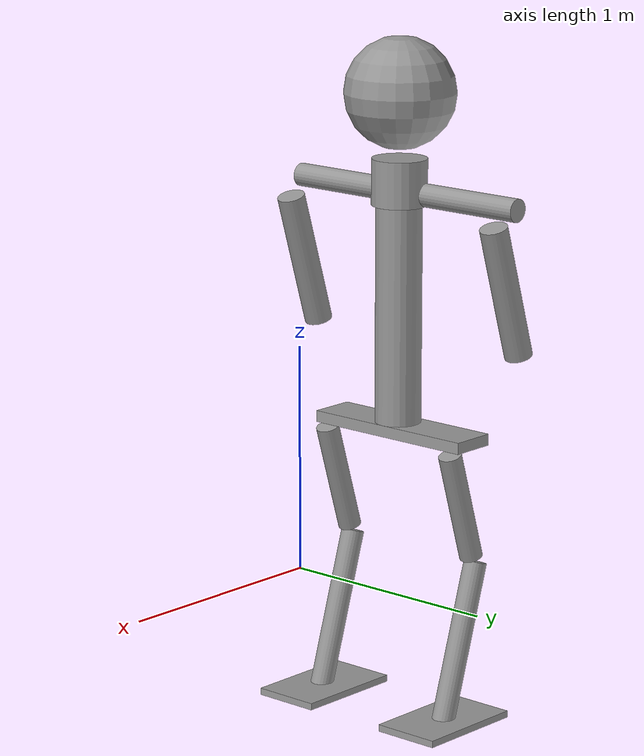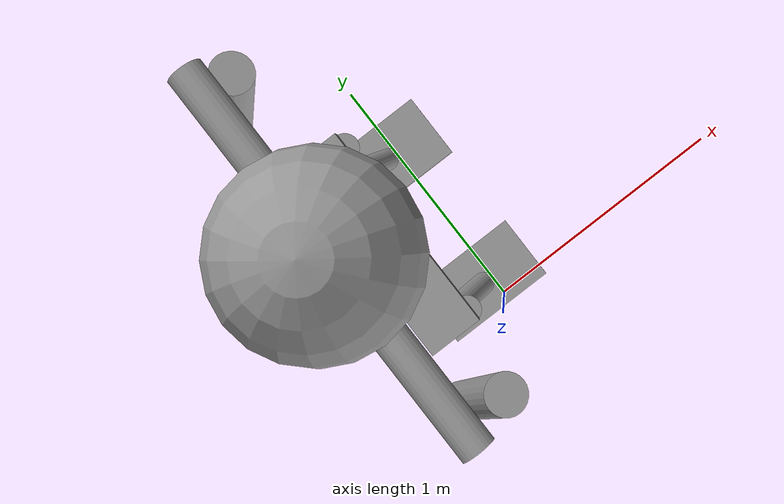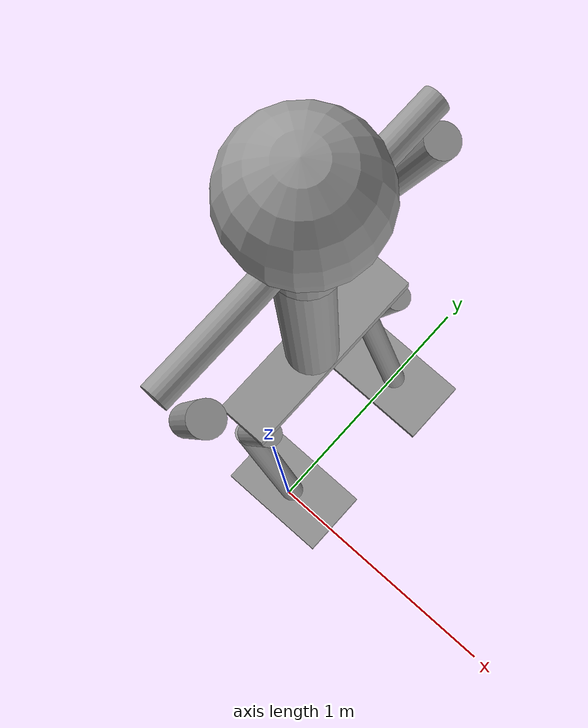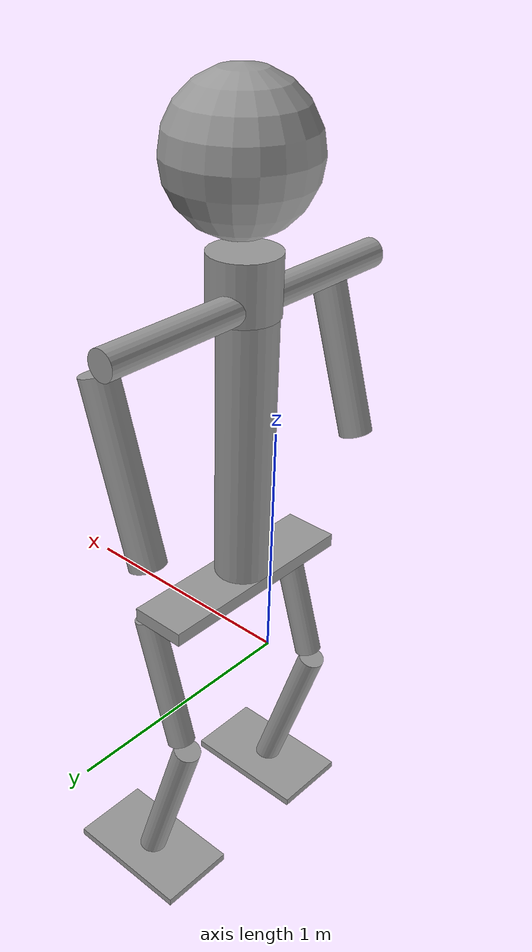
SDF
<?xml version='1.0'?>
<sdf version='1.6'>
  <model name='HumanoidRobot'>
    <model name='Untitled'>
      <model name='HumanoidRobot'>
        <link name='link_1'>
          <pose frame=''>-0.173443 0.410402 2.12746 0 -0 0</pose>
          <inertial>
            <mass>0.94</mass>
            <inertia>
              <ixx>0.1</ixx>
              <ixy>0</ixy>
              <ixz>0</ixz>
              <iyy>0.1</iyy>
              <iyz>0</iyz>
              <izz>0.1</izz>
            </inertia>
            <pose frame=''>0 0 0 0 -0 0</pose>
          </inertial>
          <gravity>1</gravity>
          <self_collide>0</self_collide>
          <kinematic>0</kinematic>
          <visual name='visual'>
            <pose frame=''>0 0 0 0 -0 0</pose>
            <geometry>
              <sphere>
                <radius>0.24</radius>
              </sphere>
            </geometry>
            <material>
              <lighting>1</lighting>
              <script>
                <uri>file://media/materials/scripts/gazebo.material</uri>
                <name>Gazebo/Grey</name>
              </script>
              <shader type='pixel'>
                <normal_map>__default__</normal_map>
              </shader>
              <ambient>0.3 0.3 0.3 1</ambient>
              <diffuse>0.7 0.7 0.7 1</diffuse>
              <specular>0.01 0.01 0.01 1</specular>
              <emissive>0 0 0 1</emissive>
            </material>
            <transparency>0</transparency>
            <cast_shadows>1</cast_shadows>
          </visual>
          <collision name='collision'>
            <laser_retro>0</laser_retro>
            <max_contacts>10</max_contacts>
            <pose frame=''>0 0 0 0 -0 0</pose>
            <geometry>
              <sphere>
                <radius>0.24</radius>
              </sphere>
            </geometry>
            <surface>
              <friction>
                <ode>
                  <mu>1</mu>
                  <mu2>1</mu2>
                  <fdir1>0 0 0</fdir1>
                  <slip1>0</slip1>
                  <slip2>0</slip2>
                </ode>
                <torsional>
                  <coefficient>1</coefficient>
                  <patch_radius>0</patch_radius>
                  <surface_radius>0</surface_radius>
                  <use_patch_radius>1</use_patch_radius>
                  <ode>
                    <slip>0</slip>
                  </ode>
                </torsional>
              </friction>
              <bounce>
                <restitution_coefficient>0</restitution_coefficient>
                <threshold>1e+06</threshold>
              </bounce>
              <contact>
                <collide_without_contact>0</collide_without_contact>
                <collide_without_contact_bitmask>1</collide_without_contact_bitmask>
                <collide_bitmask>1</collide_bitmask>
                <ode>
                  <soft_cfm>0</soft_cfm>
                  <soft_erp>0.2</soft_erp>
                  <kp>1e+13</kp>
                  <kd>1</kd>
                  <max_vel>0.01</max_vel>
                  <min_depth>0</min_depth>
                </ode>
                <bullet>
                  <split_impulse>1</split_impulse>
                  <split_impulse_penetration_threshold>-0.01</split_impulse_penetration_threshold>
                  <soft_cfm>0</soft_cfm>
                  <soft_erp>0.2</soft_erp>
                  <kp>1e+13</kp>
                  <kd>1</kd>
                </bullet>
              </contact>
            </surface>
          </collision>
        </link>
        <link name='link_2'>
          <pose frame=''>-0.183443 0.400402 1.74746 0 -0 0</pose>
          <inertial>
            <mass>1</mass>
            <inertia>
              <ixx>0.145833</ixx>
              <ixy>0</ixy>
              <ixz>0</ixz>
              <iyy>0.145833</iyy>
              <iyz>0</iyz>
              <izz>0.125</izz>
            </inertia>
            <pose frame=''>0 0 0 0 -0 0</pose>
          </inertial>
          <gravity>1</gravity>
          <self_collide>0</self_collide>
          <kinematic>0</kinematic>
          <visual name='visual'>
            <pose frame=''>0 0 0 0 -0 0</pose>
            <geometry>
              <cylinder>
                <radius>0.12</radius>
                <length>0.2</length>
              </cylinder>
            </geometry>
            <material>
              <lighting>1</lighting>
              <script>
                <uri>file://media/materials/scripts/gazebo.material</uri>
                <name>Gazebo/Grey</name>
              </script>
              <shader type='pixel'>
                <normal_map>__default__</normal_map>
              </shader>
              <ambient>0.3 0.3 0.3 1</ambient>
              <diffuse>0.7 0.7 0.7 1</diffuse>
              <specular>0.01 0.01 0.01 1</specular>
              <emissive>0 0 0 1</emissive>
            </material>
            <transparency>0</transparency>
            <cast_shadows>1</cast_shadows>
          </visual>
          <collision name='collision'>
            <laser_retro>0</laser_retro>
            <max_contacts>10</max_contacts>
            <pose frame=''>0 0 0 0 -0 0</pose>
            <geometry>
              <cylinder>
                <radius>0.12</radius>
                <length>0.2</length>
              </cylinder>
            </geometry>
            <surface>
              <friction>
                <ode>
                  <mu>1</mu>
                  <mu2>1</mu2>
                  <fdir1>0 0 0</fdir1>
                  <slip1>0</slip1>
                  <slip2>0</slip2>
                </ode>
                <torsional>
                  <coefficient>1</coefficient>
                  <patch_radius>0</patch_radius>
                  <surface_radius>0</surface_radius>
                  <use_patch_radius>1</use_patch_radius>
                  <ode>
                    <slip>0</slip>
                  </ode>
                </torsional>
              </friction>
              <bounce>
                <restitution_coefficient>0</restitution_coefficient>
                <threshold>1e+06</threshold>
              </bounce>
              <contact>
                <collide_without_contact>0</collide_without_contact>
                <collide_without_contact_bitmask>1</collide_without_contact_bitmask>
                <collide_bitmask>1</collide_bitmask>
                <ode>
                  <soft_cfm>0</soft_cfm>
                  <soft_erp>0.2</soft_erp>
                  <kp>1e+13</kp>
                  <kd>1</kd>
                  <max_vel>0.01</max_vel>
                  <min_depth>0</min_depth>
                </ode>
                <bullet>
                  <split_impulse>1</split_impulse>
                  <split_impulse_penetration_threshold>-0.01</split_impulse_penetration_threshold>
                  <soft_cfm>0</soft_cfm>
                  <soft_erp>0.2</soft_erp>
                  <kp>1e+13</kp>
                  <kd>1</kd>
                </bullet>
              </contact>
            </surface>
          </collision>
        </link>
        <link name='link_3'>
          <pose frame=''>-0.218443 0.410402 1.69752 0 -0 0</pose>
          <inertial>
            <mass>1</mass>
            <inertia>
              <ixx>0.145833</ixx>
              <ixy>0</ixy>
              <ixz>0</ixz>
              <iyy>0.145833</iyy>
              <iyz>0</iyz>
              <izz>0.125</izz>
            </inertia>
            <pose frame=''>0 0 0 0 -0 0</pose>
          </inertial>
          <gravity>1</gravity>
          <self_collide>0</self_collide>
          <kinematic>0</kinematic>
          <visual name='visual'>
            <pose frame=''>0 0 0 1.5707 -0 0</pose>
            <geometry>
              <cylinder>
                <radius>0.05</radius>
                <length>1.2</length>
              </cylinder>
            </geometry>
            <material>
              <lighting>1</lighting>
              <script>
                <uri>file://media/materials/scripts/gazebo.material</uri>
                <name>Gazebo/Grey</name>
              </script>
              <shader type='pixel'>
                <normal_map>__default__</normal_map>
              </shader>
              <ambient>0.3 0.3 0.3 1</ambient>
              <diffuse>0.7 0.7 0.7 1</diffuse>
              <specular>0.01 0.01 0.01 1</specular>
              <emissive>0 0 0 1</emissive>
            </material>
            <transparency>0</transparency>
            <cast_shadows>1</cast_shadows>
          </visual>
          <collision name='collision'>
            <laser_retro>0</laser_retro>
            <max_contacts>10</max_contacts>
            <pose frame=''>0 0 0 1.5707 -0 0</pose>
            <geometry>
              <cylinder>
                <radius>0.05</radius>
                <length>1.2</length>
              </cylinder>
            </geometry>
            <surface>
              <friction>
                <ode>
                  <mu>1</mu>
                  <mu2>1</mu2>
                  <fdir1>0 0 0</fdir1>
                  <slip1>0</slip1>
                  <slip2>0</slip2>
                </ode>
                <torsional>
                  <coefficient>1</coefficient>
                  <patch_radius>0</patch_radius>
                  <surface_radius>0</surface_radius>
                  <use_patch_radius>1</use_patch_radius>
                  <ode>
                    <slip>0</slip>
                  </ode>
                </torsional>
              </friction>
              <bounce>
                <restitution_coefficient>0</restitution_coefficient>
                <threshold>1e+06</threshold>
              </bounce>
              <contact>
                <collide_without_contact>0</collide_without_contact>
                <collide_without_contact_bitmask>1</collide_without_contact_bitmask>
                <collide_bitmask>1</collide_bitmask>
                <ode>
                  <soft_cfm>0</soft_cfm>
                  <soft_erp>0.2</soft_erp>
                  <kp>1e+13</kp>
                  <kd>1</kd>
                  <max_vel>0.01</max_vel>
                  <min_depth>0</min_depth>
                </ode>
                <bullet>
                  <split_impulse>1</split_impulse>
                  <split_impulse_penetration_threshold>-0.01</split_impulse_penetration_threshold>
                  <soft_cfm>0</soft_cfm>
                  <soft_erp>0.2</soft_erp>
                  <kp>1e+13</kp>
                  <kd>1</kd>
                </bullet>
              </contact>
            </surface>
          </collision>
        </link>
        <link name='link_4'>
          <pose frame=''>-0.173443 -0.129603 1.34313 0 -0 0</pose>
          <inertial>
            <mass>1</mass>
            <inertia>
              <ixx>0.145833</ixx>
              <ixy>0</ixy>
              <ixz>0</ixz>
              <iyy>0.145833</iyy>
              <iyz>0</iyz>
              <izz>0.125</izz>
            </inertia>
            <pose frame=''>0 0 0 0 -0 0</pose>
          </inertial>
          <gravity>1</gravity>
          <self_collide>0</self_collide>
          <kinematic>0</kinematic>
          <visual name='visual'>
            <pose frame=''>0 0 0 0 0.3 0</pose>
            <geometry>
              <cylinder>
                <radius>0.06</radius>
                <length>0.6</length>
              </cylinder>
            </geometry>
            <material>
              <lighting>1</lighting>
              <script>
                <uri>file://media/materials/scripts/gazebo.material</uri>
                <name>Gazebo/Grey</name>
              </script>
              <shader type='pixel'>
                <normal_map>__default__</normal_map>
              </shader>
              <ambient>0.3 0.3 0.3 1</ambient>
              <diffuse>0.7 0.7 0.7 1</diffuse>
              <specular>0.01 0.01 0.01 1</specular>
              <emissive>0 0 0 1</emissive>
            </material>
            <transparency>0</transparency>
            <cast_shadows>1</cast_shadows>
          </visual>
          <collision name='collision'>
            <laser_retro>0</laser_retro>
            <max_contacts>10</max_contacts>
            <pose frame=''>0 0 0 0 0.3 0</pose>
            <geometry>
              <cylinder>
                <radius>0.06</radius>
                <length>0.6</length>
              </cylinder>
            </geometry>
            <surface>
              <friction>
                <ode>
                  <mu>1</mu>
                  <mu2>1</mu2>
                  <fdir1>0 0 0</fdir1>
                  <slip1>0</slip1>
                  <slip2>0</slip2>
                </ode>
                <torsional>
                  <coefficient>1</coefficient>
                  <patch_radius>0</patch_radius>
                  <surface_radius>0</surface_radius>
                  <use_patch_radius>1</use_patch_radius>
                  <ode>
                    <slip>0</slip>
                  </ode>
                </torsional>
              </friction>
              <bounce>
                <restitution_coefficient>0</restitution_coefficient>
                <threshold>1e+06</threshold>
              </bounce>
              <contact>
                <collide_without_contact>0</collide_without_contact>
                <collide_without_contact_bitmask>1</collide_without_contact_bitmask>
                <collide_bitmask>1</collide_bitmask>
                <ode>
                  <soft_cfm>0</soft_cfm>
                  <soft_erp>0.2</soft_erp>
                  <kp>1e+13</kp>
                  <kd>1</kd>
                  <max_vel>0.01</max_vel>
                  <min_depth>0</min_depth>
                </ode>
                <bullet>
                  <split_impulse>1</split_impulse>
                  <split_impulse_penetration_threshold>-0.01</split_impulse_penetration_threshold>
                  <soft_cfm>0</soft_cfm>
                  <soft_erp>0.2</soft_erp>
                  <kp>1e+13</kp>
                  <kd>1</kd>
                </bullet>
              </contact>
            </surface>
          </collision>
        </link>
        <link name='link_4_clone'>
          <pose frame=''>-0.224419 0.950407 1.34313 0 -0 0</pose>
          <inertial>
            <mass>1</mass>
            <inertia>
              <ixx>0.145833</ixx>
              <ixy>0</ixy>
              <ixz>0</ixz>
              <iyy>0.145833</iyy>
              <iyz>0</iyz>
              <izz>0.125</izz>
            </inertia>
            <pose frame=''>0 0 0 0 -0 0</pose>
          </inertial>
          <self_collide>0</self_collide>
          <kinematic>0</kinematic>
          <visual name='visual'>
            <pose frame=''>0 0 0 0 0.3 0</pose>
            <geometry>
              <cylinder>
                <radius>0.06</radius>
                <length>0.6</length>
              </cylinder>
            </geometry>
            <material>
              <lighting>1</lighting>
              <script>
                <uri>file://media/materials/scripts/gazebo.material</uri>
                <name>Gazebo/Grey</name>
              </script>
              <shader type='pixel'>
                <normal_map>__default__</normal_map>
              </shader>
              <ambient>0.3 0.3 0.3 1</ambient>
              <diffuse>0.7 0.7 0.7 1</diffuse>
              <specular>0.01 0.01 0.01 1</specular>
              <emissive>0 0 0 1</emissive>
            </material>
            <transparency>0</transparency>
            <cast_shadows>1</cast_shadows>
          </visual>
          <collision name='collision'>
            <laser_retro>0</laser_retro>
            <max_contacts>10</max_contacts>
            <pose frame=''>0 0 0 0 0.3 0</pose>
            <geometry>
              <cylinder>
                <radius>0.06</radius>
                <length>0.6</length>
              </cylinder>
            </geometry>
            <surface>
              <friction>
                <ode>
                  <mu>1</mu>
                  <mu2>1</mu2>
                  <fdir1>0 0 0</fdir1>
                  <slip1>0</slip1>
                  <slip2>0</slip2>
                </ode>
                <torsional>
                  <coefficient>1</coefficient>
                  <patch_radius>0</patch_radius>
                  <surface_radius>0</surface_radius>
                  <use_patch_radius>1</use_patch_radius>
                  <ode>
                    <slip>0</slip>
                  </ode>
                </torsional>
              </friction>
              <bounce>
                <restitution_coefficient>0</restitution_coefficient>
                <threshold>1e+06</threshold>
              </bounce>
              <contact>
                <collide_without_contact>0</collide_without_contact>
                <collide_without_contact_bitmask>1</collide_without_contact_bitmask>
                <collide_bitmask>1</collide_bitmask>
                <ode>
                  <soft_cfm>0</soft_cfm>
                  <soft_erp>0.2</soft_erp>
                  <kp>1e+13</kp>
                  <kd>1</kd>
                  <max_vel>0.01</max_vel>
                  <min_depth>0</min_depth>
                </ode>
                <bullet>
                  <split_impulse>1</split_impulse>
                  <split_impulse_penetration_threshold>-0.01</split_impulse_penetration_threshold>
                  <soft_cfm>0</soft_cfm>
                  <soft_erp>0.2</soft_erp>
                  <kp>1e+13</kp>
                  <kd>1</kd>
                </bullet>
              </contact>
            </surface>
          </collision>
        </link>
        <link name='link_5'>
          <pose frame=''>-0.193443 0.390402 1.14746 0 -0 0</pose>
          <inertial>
            <mass>1</mass>
            <inertia>
              <ixx>0.145833</ixx>
              <ixy>0</ixy>
              <ixz>0</ixz>
              <iyy>0.145833</iyy>
              <iyz>0</iyz>
              <izz>0.125</izz>
            </inertia>
            <pose frame=''>0 0 0 0 -0 0</pose>
          </inertial>
          <gravity>1</gravity>
          <self_collide>0</self_collide>
          <kinematic>0</kinematic>
          <visual name='visual'>
            <pose frame=''>0 0 0 0 -0 0</pose>
            <geometry>
              <cylinder>
                <radius>0.1</radius>
                <length>1</length>
              </cylinder>
            </geometry>
            <material>
              <lighting>1</lighting>
              <script>
                <uri>file://media/materials/scripts/gazebo.material</uri>
                <name>Gazebo/Grey</name>
              </script>
              <shader type='pixel'>
                <normal_map>__default__</normal_map>
              </shader>
              <ambient>0.3 0.3 0.3 1</ambient>
              <diffuse>0.7 0.7 0.7 1</diffuse>
              <specular>0.01 0.01 0.01 1</specular>
              <emissive>0 0 0 1</emissive>
            </material>
            <transparency>0</transparency>
            <cast_shadows>1</cast_shadows>
          </visual>
          <collision name='collision'>
            <laser_retro>0</laser_retro>
            <max_contacts>10</max_contacts>
            <pose frame=''>0 0 0 0 -0 0</pose>
            <geometry>
              <cylinder>
                <radius>0.1</radius>
                <length>1</length>
              </cylinder>
            </geometry>
            <surface>
              <friction>
                <ode>
                  <mu>1</mu>
                  <mu2>1</mu2>
                  <fdir1>0 0 0</fdir1>
                  <slip1>0</slip1>
                  <slip2>0</slip2>
                </ode>
                <torsional>
                  <coefficient>1</coefficient>
                  <patch_radius>0</patch_radius>
                  <surface_radius>0</surface_radius>
                  <use_patch_radius>1</use_patch_radius>
                  <ode>
                    <slip>0</slip>
                  </ode>
                </torsional>
              </friction>
              <bounce>
                <restitution_coefficient>0</restitution_coefficient>
                <threshold>1e+06</threshold>
              </bounce>
              <contact>
                <collide_without_contact>0</collide_without_contact>
                <collide_without_contact_bitmask>1</collide_without_contact_bitmask>
                <collide_bitmask>1</collide_bitmask>
                <ode>
                  <soft_cfm>0</soft_cfm>
                  <soft_erp>0.2</soft_erp>
                  <kp>1e+13</kp>
                  <kd>1</kd>
                  <max_vel>0.01</max_vel>
                  <min_depth>0</min_depth>
                </ode>
                <bullet>
                  <split_impulse>1</split_impulse>
                  <split_impulse_penetration_threshold>-0.01</split_impulse_penetration_threshold>
                  <soft_cfm>0</soft_cfm>
                  <soft_erp>0.2</soft_erp>
                  <kp>1e+13</kp>
                  <kd>1</kd>
                </bullet>
              </contact>
            </surface>
          </collision>
        </link>
        <link name='link_6'>
          <pose frame=''>-0.193443 0.410402 0.672459 0 -0 0</pose>
          <inertial>
            <mass>1</mass>
            <inertia>
              <ixx>0.166667</ixx>
              <ixy>0</ixy>
              <ixz>0</ixz>
              <iyy>0.166667</iyy>
              <iyz>0</iyz>
              <izz>0.166667</izz>
            </inertia>
            <pose frame=''>0 0 0 0 -0 0</pose>
          </inertial>
          <gravity>1</gravity>
          <self_collide>0</self_collide>
          <kinematic>0</kinematic>
          <visual name='visual'>
            <pose frame=''>0 0 0 0 -0 0</pose>
            <geometry>
              <box>
                <size>0.2 0.8 0.05</size>
              </box>
            </geometry>
            <material>
              <lighting>1</lighting>
              <script>
                <uri>file://media/materials/scripts/gazebo.material</uri>
                <name>Gazebo/Grey</name>
              </script>
              <shader type='pixel'>
                <normal_map>__default__</normal_map>
              </shader>
              <ambient>0.3 0.3 0.3 1</ambient>
              <diffuse>0.7 0.7 0.7 1</diffuse>
              <specular>0.01 0.01 0.01 1</specular>
              <emissive>0 0 0 1</emissive>
            </material>
            <transparency>0</transparency>
            <cast_shadows>1</cast_shadows>
          </visual>
          <collision name='collision'>
            <laser_retro>0</laser_retro>
            <max_contacts>10</max_contacts>
            <pose frame=''>0 0 0 0 -0 0</pose>
            <geometry>
              <box>
                <size>0.2 0.8 0.05</size>
              </box>
            </geometry>
            <surface>
              <friction>
                <ode>
                  <mu>1</mu>
                  <mu2>1</mu2>
                  <fdir1>0 0 0</fdir1>
                  <slip1>0</slip1>
                  <slip2>0</slip2>
                </ode>
                <torsional>
                  <coefficient>1</coefficient>
                  <patch_radius>0</patch_radius>
                  <surface_radius>0</surface_radius>
                  <use_patch_radius>1</use_patch_radius>
                  <ode>
                    <slip>0</slip>
                  </ode>
                </torsional>
              </friction>
              <bounce>
                <restitution_coefficient>0</restitution_coefficient>
                <threshold>1e+06</threshold>
              </bounce>
              <contact>
                <collide_without_contact>0</collide_without_contact>
                <collide_without_contact_bitmask>1</collide_without_contact_bitmask>
                <collide_bitmask>1</collide_bitmask>
                <ode>
                  <soft_cfm>0</soft_cfm>
                  <soft_erp>0.2</soft_erp>
                  <kp>1e+13</kp>
                  <kd>1</kd>
                  <max_vel>0.01</max_vel>
                  <min_depth>0</min_depth>
                </ode>
                <bullet>
                  <split_impulse>1</split_impulse>
                  <split_impulse_penetration_threshold>-0.01</split_impulse_penetration_threshold>
                  <soft_cfm>0</soft_cfm>
                  <soft_erp>0.2</soft_erp>
                  <kp>1e+13</kp>
                  <kd>1</kd>
                </bullet>
              </contact>
            </surface>
          </collision>
        </link>
        <link name='link_7'>
          <pose frame=''>-0.18262 0.060402 0.393848 0 -0 0</pose>
          <inertial>
            <mass>1</mass>
            <inertia>
              <ixx>0.145833</ixx>
              <ixy>0</ixy>
              <ixz>0</ixz>
              <iyy>0.145833</iyy>
              <iyz>0</iyz>
              <izz>0.125</izz>
            </inertia>
            <pose frame=''>0 0 0 0 -0 0</pose>
          </inertial>
          <gravity>1</gravity>
          <self_collide>0</self_collide>
          <kinematic>0</kinematic>
          <visual name='visual'>
            <pose frame=''>0 0 0 0 0.3 0</pose>
            <geometry>
              <cylinder>
                <radius>0.05</radius>
                <length>0.5</length>
              </cylinder>
            </geometry>
            <material>
              <lighting>1</lighting>
              <script>
                <uri>file://media/materials/scripts/gazebo.material</uri>
                <name>Gazebo/Grey</name>
              </script>
              <shader type='pixel'>
                <normal_map>__default__</normal_map>
              </shader>
              <ambient>0.3 0.3 0.3 1</ambient>
              <diffuse>0.7 0.7 0.7 1</diffuse>
              <specular>0.01 0.01 0.01 1</specular>
              <emissive>0 0 0 1</emissive>
            </material>
            <transparency>0</transparency>
            <cast_shadows>1</cast_shadows>
          </visual>
          <collision name='collision'>
            <laser_retro>0</laser_retro>
            <max_contacts>10</max_contacts>
            <pose frame=''>0 0 0 0 0.3 0</pose>
            <geometry>
              <cylinder>
                <radius>0.05</radius>
                <length>0.5</length>
              </cylinder>
            </geometry>
            <surface>
              <friction>
                <ode>
                  <mu>1</mu>
                  <mu2>1</mu2>
                  <fdir1>0 0 0</fdir1>
                  <slip1>0</slip1>
                  <slip2>0</slip2>
                </ode>
                <torsional>
                  <coefficient>1</coefficient>
                  <patch_radius>0</patch_radius>
                  <surface_radius>0</surface_radius>
                  <use_patch_radius>1</use_patch_radius>
                  <ode>
                    <slip>0</slip>
                  </ode>
                </torsional>
              </friction>
              <bounce>
                <restitution_coefficient>0</restitution_coefficient>
                <threshold>1e+06</threshold>
              </bounce>
              <contact>
                <collide_without_contact>0</collide_without_contact>
                <collide_without_contact_bitmask>1</collide_without_contact_bitmask>
                <collide_bitmask>1</collide_bitmask>
                <ode>
                  <soft_cfm>0</soft_cfm>
                  <soft_erp>0.2</soft_erp>
                  <kp>1e+13</kp>
                  <kd>1</kd>
                  <max_vel>0.01</max_vel>
                  <min_depth>0</min_depth>
                </ode>
                <bullet>
                  <split_impulse>1</split_impulse>
                  <split_impulse_penetration_threshold>-0.01</split_impulse_penetration_threshold>
                  <soft_cfm>0</soft_cfm>
                  <soft_erp>0.2</soft_erp>
                  <kp>1e+13</kp>
                  <kd>1</kd>
                </bullet>
              </contact>
            </surface>
          </collision>
        </link>
        <link name='link_7_clone'>
          <pose frame=''>-0.173443 0.760402 0.393849 0 -0 0</pose>
          <inertial>
            <mass>1</mass>
            <inertia>
              <ixx>0.145833</ixx>
              <ixy>0</ixy>
              <ixz>0</ixz>
              <iyy>0.145833</iyy>
              <iyz>0</iyz>
              <izz>0.125</izz>
            </inertia>
            <pose frame=''>0 0 0 0 -0 0</pose>
          </inertial>
          <self_collide>0</self_collide>
          <kinematic>0</kinematic>
          <visual name='visual'>
            <pose frame=''>0 0 0 0 0.3 0</pose>
            <geometry>
              <cylinder>
                <radius>0.05</radius>
                <length>0.5</length>
              </cylinder>
            </geometry>
            <material>
              <lighting>1</lighting>
              <script>
                <uri>file://media/materials/scripts/gazebo.material</uri>
                <name>Gazebo/Grey</name>
              </script>
              <shader type='pixel'>
                <normal_map>__default__</normal_map>
              </shader>
              <ambient>0.3 0.3 0.3 1</ambient>
              <diffuse>0.7 0.7 0.7 1</diffuse>
              <specular>0.01 0.01 0.01 1</specular>
              <emissive>0 0 0 1</emissive>
            </material>
            <transparency>0</transparency>
            <cast_shadows>1</cast_shadows>
          </visual>
          <collision name='collision'>
            <laser_retro>0</laser_retro>
            <max_contacts>10</max_contacts>
            <pose frame=''>0 0 0 0 0.3 0</pose>
            <geometry>
              <cylinder>
                <radius>0.05</radius>
                <length>0.5</length>
              </cylinder>
            </geometry>
            <surface>
              <friction>
                <ode>
                  <mu>1</mu>
                  <mu2>1</mu2>
                  <fdir1>0 0 0</fdir1>
                  <slip1>0</slip1>
                  <slip2>0</slip2>
                </ode>
                <torsional>
                  <coefficient>1</coefficient>
                  <patch_radius>0</patch_radius>
                  <surface_radius>0</surface_radius>
                  <use_patch_radius>1</use_patch_radius>
                  <ode>
                    <slip>0</slip>
                  </ode>
                </torsional>
              </friction>
              <bounce>
                <restitution_coefficient>0</restitution_coefficient>
                <threshold>1e+06</threshold>
              </bounce>
              <contact>
                <collide_without_contact>0</collide_without_contact>
                <collide_without_contact_bitmask>1</collide_without_contact_bitmask>
                <collide_bitmask>1</collide_bitmask>
                <ode>
                  <soft_cfm>0</soft_cfm>
                  <soft_erp>0.2</soft_erp>
                  <kp>1e+13</kp>
                  <kd>1</kd>
                  <max_vel>0.01</max_vel>
                  <min_depth>0</min_depth>
                </ode>
                <bullet>
                  <split_impulse>1</split_impulse>
                  <split_impulse_penetration_threshold>-0.01</split_impulse_penetration_threshold>
                  <soft_cfm>0</soft_cfm>
                  <soft_erp>0.2</soft_erp>
                  <kp>1e+13</kp>
                  <kd>1</kd>
                </bullet>
              </contact>
            </surface>
          </collision>
        </link>
        <link name='link_8'>
          <pose frame=''>-0.173443 0.060402 -0.208906 0 -0 0</pose>
          <inertial>
            <mass>1</mass>
            <inertia>
              <ixx>0.145833</ixx>
              <ixy>0</ixy>
              <ixz>0</ixz>
              <iyy>0.145833</iyy>
              <iyz>0</iyz>
              <izz>0.125</izz>
            </inertia>
            <pose frame=''>0 0 0 0 -0 0</pose>
          </inertial>
          <gravity>1</gravity>
          <self_collide>0</self_collide>
          <kinematic>0</kinematic>
          <visual name='visual'>
            <pose frame=''>0 0 0 0 -0.3 0</pose>
            <geometry>
              <cylinder>
                <radius>0.05</radius>
                <length>0.7</length>
              </cylinder>
            </geometry>
            <material>
              <lighting>1</lighting>
              <script>
                <uri>file://media/materials/scripts/gazebo.material</uri>
                <name>Gazebo/Grey</name>
              </script>
              <shader type='pixel'>
                <normal_map>__default__</normal_map>
              </shader>
              <ambient>0.3 0.3 0.3 1</ambient>
              <diffuse>0.7 0.7 0.7 1</diffuse>
              <specular>0.01 0.01 0.01 1</specular>
              <emissive>0 0 0 1</emissive>
            </material>
            <transparency>0</transparency>
            <cast_shadows>1</cast_shadows>
          </visual>
          <collision name='collision'>
            <laser_retro>0</laser_retro>
            <max_contacts>10</max_contacts>
            <pose frame=''>0 0 0 0 -0.3 0</pose>
            <geometry>
              <cylinder>
                <radius>0.05</radius>
                <length>0.7</length>
              </cylinder>
            </geometry>
            <surface>
              <friction>
                <ode>
                  <mu>1</mu>
                  <mu2>1</mu2>
                  <fdir1>0 0 0</fdir1>
                  <slip1>0</slip1>
                  <slip2>0</slip2>
                </ode>
                <torsional>
                  <coefficient>1</coefficient>
                  <patch_radius>0</patch_radius>
                  <surface_radius>0</surface_radius>
                  <use_patch_radius>1</use_patch_radius>
                  <ode>
                    <slip>0</slip>
                  </ode>
                </torsional>
              </friction>
              <bounce>
                <restitution_coefficient>0</restitution_coefficient>
                <threshold>1e+06</threshold>
              </bounce>
              <contact>
                <collide_without_contact>0</collide_without_contact>
                <collide_without_contact_bitmask>1</collide_without_contact_bitmask>
                <collide_bitmask>1</collide_bitmask>
                <ode>
                  <soft_cfm>0</soft_cfm>
                  <soft_erp>0.2</soft_erp>
                  <kp>1e+13</kp>
                  <kd>1</kd>
                  <max_vel>0.01</max_vel>
                  <min_depth>0</min_depth>
                </ode>
                <bullet>
                  <split_impulse>1</split_impulse>
                  <split_impulse_penetration_threshold>-0.01</split_impulse_penetration_threshold>
                  <soft_cfm>0</soft_cfm>
                  <soft_erp>0.2</soft_erp>
                  <kp>1e+13</kp>
                  <kd>1</kd>
                </bullet>
              </contact>
            </surface>
          </collision>
        </link>
        <link name='link_8_clone'>
          <pose frame=''>-0.173443 0.760402 -0.208905 0 -0 0</pose>
          <inertial>
            <mass>1</mass>
            <inertia>
              <ixx>0.145833</ixx>
              <ixy>0</ixy>
              <ixz>0</ixz>
              <iyy>0.145833</iyy>
              <iyz>0</iyz>
              <izz>0.125</izz>
            </inertia>
            <pose frame=''>0 0 0 0 -0 0</pose>
          </inertial>
          <self_collide>0</self_collide>
          <kinematic>0</kinematic>
          <visual name='visual'>
            <pose frame=''>0 0 0 0 -0.3 0</pose>
            <geometry>
              <cylinder>
                <radius>0.05</radius>
                <length>0.7</length>
              </cylinder>
            </geometry>
            <material>
              <lighting>1</lighting>
              <script>
                <uri>file://media/materials/scripts/gazebo.material</uri>
                <name>Gazebo/Grey</name>
              </script>
              <shader type='pixel'>
                <normal_map>__default__</normal_map>
              </shader>
              <ambient>0.3 0.3 0.3 1</ambient>
              <diffuse>0.7 0.7 0.7 1</diffuse>
              <specular>0.01 0.01 0.01 1</specular>
              <emissive>0 0 0 1</emissive>
            </material>
            <transparency>0</transparency>
            <cast_shadows>1</cast_shadows>
          </visual>
          <collision name='collision'>
            <laser_retro>0</laser_retro>
            <max_contacts>10</max_contacts>
            <pose frame=''>0 0 0 0 -0.3 0</pose>
            <geometry>
              <cylinder>
                <radius>0.05</radius>
                <length>0.7</length>
              </cylinder>
            </geometry>
            <surface>
              <friction>
                <ode>
                  <mu>1</mu>
                  <mu2>1</mu2>
                  <fdir1>0 0 0</fdir1>
                  <slip1>0</slip1>
                  <slip2>0</slip2>
                </ode>
                <torsional>
                  <coefficient>1</coefficient>
                  <patch_radius>0</patch_radius>
                  <surface_radius>0</surface_radius>
                  <use_patch_radius>1</use_patch_radius>
                  <ode>
                    <slip>0</slip>
                  </ode>
                </torsional>
              </friction>
              <bounce>
                <restitution_coefficient>0</restitution_coefficient>
                <threshold>1e+06</threshold>
              </bounce>
              <contact>
                <collide_without_contact>0</collide_without_contact>
                <collide_without_contact_bitmask>1</collide_without_contact_bitmask>
                <collide_bitmask>1</collide_bitmask>
                <ode>
                  <soft_cfm>0</soft_cfm>
                  <soft_erp>0.2</soft_erp>
                  <kp>1e+13</kp>
                  <kd>1</kd>
                  <max_vel>0.01</max_vel>
                  <min_depth>0</min_depth>
                </ode>
                <bullet>
                  <split_impulse>1</split_impulse>
                  <split_impulse_penetration_threshold>-0.01</split_impulse_penetration_threshold>
                  <soft_cfm>0</soft_cfm>
                  <soft_erp>0.2</soft_erp>
                  <kp>1e+13</kp>
                  <kd>1</kd>
                </bullet>
              </contact>
            </surface>
          </collision>
        </link>
        <link name='link_9'>
          <pose frame=''>-0.073443 0.072902 -0.54305 0 -0 0</pose>
          <inertial>
            <mass>1</mass>
            <inertia>
              <ixx>0.166667</ixx>
              <ixy>0</ixy>
              <ixz>0</ixz>
              <iyy>0.166667</iyy>
              <iyz>0</iyz>
              <izz>0.166667</izz>
            </inertia>
            <pose frame=''>0 0 0 0 -0 0</pose>
          </inertial>
          <gravity>1</gravity>
          <self_collide>0</self_collide>
          <kinematic>0</kinematic>
          <visual name='visual'>
            <pose frame=''>0 0 0 0 -0 0</pose>
            <geometry>
              <box>
                <size>0.5 0.3 0.03</size>
              </box>
            </geometry>
            <material>
              <lighting>1</lighting>
              <script>
                <uri>file://media/materials/scripts/gazebo.material</uri>
                <name>Gazebo/Grey</name>
              </script>
              <shader type='pixel'>
                <normal_map>__default__</normal_map>
              </shader>
              <ambient>0.3 0.3 0.3 1</ambient>
              <diffuse>0.7 0.7 0.7 1</diffuse>
              <specular>0.01 0.01 0.01 1</specular>
              <emissive>0 0 0 1</emissive>
            </material>
            <transparency>0</transparency>
            <cast_shadows>1</cast_shadows>
          </visual>
          <collision name='collision'>
            <laser_retro>0</laser_retro>
            <max_contacts>10</max_contacts>
            <pose frame=''>0 0 0 0 -0 0</pose>
            <geometry>
              <box>
                <size>0.5 0.3 0.03</size>
              </box>
            </geometry>
            <surface>
              <friction>
                <ode>
                  <mu>1</mu>
                  <mu2>1</mu2>
                  <fdir1>0 0 0</fdir1>
                  <slip1>0</slip1>
                  <slip2>0</slip2>
                </ode>
                <torsional>
                  <coefficient>1</coefficient>
                  <patch_radius>0</patch_radius>
                  <surface_radius>0</surface_radius>
                  <use_patch_radius>1</use_patch_radius>
                  <ode>
                    <slip>0</slip>
                  </ode>
                </torsional>
              </friction>
              <bounce>
                <restitution_coefficient>0</restitution_coefficient>
                <threshold>1e+06</threshold>
              </bounce>
              <contact>
                <collide_without_contact>0</collide_without_contact>
                <collide_without_contact_bitmask>1</collide_without_contact_bitmask>
                <collide_bitmask>1</collide_bitmask>
                <ode>
                  <soft_cfm>0</soft_cfm>
                  <soft_erp>0.2</soft_erp>
                  <kp>1e+13</kp>
                  <kd>1</kd>
                  <max_vel>0.01</max_vel>
                  <min_depth>0</min_depth>
                </ode>
                <bullet>
                  <split_impulse>1</split_impulse>
                  <split_impulse_penetration_threshold>-0.01</split_impulse_penetration_threshold>
                  <soft_cfm>0</soft_cfm>
                  <soft_erp>0.2</soft_erp>
                  <kp>1e+13</kp>
                  <kd>1</kd>
                </bullet>
              </contact>
            </surface>
          </collision>
        </link>
        <link name='link_9_clone'>
          <pose frame=''>-0.073443 0.760402 -0.543049 0 -0 0</pose>
          <inertial>
            <mass>1</mass>
            <inertia>
              <ixx>0.166667</ixx>
              <ixy>0</ixy>
              <ixz>0</ixz>
              <iyy>0.166667</iyy>
              <iyz>0</iyz>
              <izz>0.166667</izz>
            </inertia>
            <pose frame=''>0 0 0 0 -0 0</pose>
          </inertial>
          <self_collide>0</self_collide>
          <kinematic>0</kinematic>
          <visual name='visual'>
            <pose frame=''>0 0 0 0 -0 0</pose>
            <geometry>
              <box>
                <size>0.5 0.3 0.03</size>
              </box>
            </geometry>
            <material>
              <lighting>1</lighting>
              <script>
                <uri>file://media/materials/scripts/gazebo.material</uri>
                <name>Gazebo/Grey</name>
              </script>
              <shader type='pixel'>
                <normal_map>__default__</normal_map>
              </shader>
              <ambient>0.3 0.3 0.3 1</ambient>
              <diffuse>0.7 0.7 0.7 1</diffuse>
              <specular>0.01 0.01 0.01 1</specular>
              <emissive>0 0 0 1</emissive>
            </material>
            <transparency>0</transparency>
            <cast_shadows>1</cast_shadows>
          </visual>
          <collision name='collision'>
            <laser_retro>0</laser_retro>
            <max_contacts>10</max_contacts>
            <pose frame=''>0 0 0 0 -0 0</pose>
            <geometry>
              <box>
                <size>0.5 0.3 0.03</size>
              </box>
            </geometry>
            <surface>
              <friction>
                <ode>
                  <mu>1</mu>
                  <mu2>1</mu2>
                  <fdir1>0 0 0</fdir1>
                  <slip1>0</slip1>
                  <slip2>0</slip2>
                </ode>
                <torsional>
                  <coefficient>1</coefficient>
                  <patch_radius>0</patch_radius>
                  <surface_radius>0</surface_radius>
                  <use_patch_radius>1</use_patch_radius>
                  <ode>
                    <slip>0</slip>
                  </ode>
                </torsional>
              </friction>
              <bounce>
                <restitution_coefficient>0</restitution_coefficient>
                <threshold>1e+06</threshold>
              </bounce>
              <contact>
                <collide_without_contact>0</collide_without_contact>
                <collide_without_contact_bitmask>1</collide_without_contact_bitmask>
                <collide_bitmask>1</collide_bitmask>
                <ode>
                  <soft_cfm>0</soft_cfm>
                  <soft_erp>0.2</soft_erp>
                  <kp>1e+13</kp>
                  <kd>1</kd>
                  <max_vel>0.01</max_vel>
                  <min_depth>0</min_depth>
                </ode>
                <bullet>
                  <split_impulse>1</split_impulse>
                  <split_impulse_penetration_threshold>-0.01</split_impulse_penetration_threshold>
                  <soft_cfm>0</soft_cfm>
                  <soft_erp>0.2</soft_erp>
                  <kp>1e+13</kp>
                  <kd>1</kd>
                </bullet>
              </contact>
            </surface>
          </collision>
        </link>
        <joint name='link_1_JOINT_0' type='fixed'>
          <parent>link_1</parent>
          <child>link_2</child>
          <pose frame=''>0 0 0 0 -0 0</pose>
          <axis>
            <xyz>1 0 0</xyz>
            <use_parent_model_frame>0</use_parent_model_frame>
            <limit>
              <lower>-1.79769e+308</lower>
              <upper>1.79769e+308</upper>
              <effort>-1</effort>
              <velocity>-1</velocity>
            </limit>
            <dynamics>
              <spring_reference>0</spring_reference>
              <spring_stiffness>0</spring_stiffness>
              <damping>0</damping>
            </dynamics>
          </axis>
          <physics>
            <ode>
              <limit>
                <cfm>0</cfm>
                <erp>0.2</erp>
              </limit>
              <suspension>
                <cfm>0</cfm>
                <erp>0.2</erp>
              </suspension>
            </ode>
          </physics>
        </joint>
        <joint name='link_2_JOINT_1' type='fixed'>
          <parent>link_2</parent>
          <child>link_3</child>
          <pose frame=''>0 0 0 0 -0 0</pose>
          <axis>
            <xyz>1 0 0</xyz>
            <use_parent_model_frame>0</use_parent_model_frame>
            <limit>
              <lower>-1.79769e+308</lower>
              <upper>1.79769e+308</upper>
              <effort>-1</effort>
              <velocity>-1</velocity>
            </limit>
            <dynamics>
              <spring_reference>0</spring_reference>
              <spring_stiffness>0</spring_stiffness>
              <damping>0</damping>
            </dynamics>
          </axis>
          <physics>
            <ode>
              <limit>
                <cfm>0</cfm>
                <erp>0.2</erp>
              </limit>
              <suspension>
                <cfm>0</cfm>
                <erp>0.2</erp>
              </suspension>
            </ode>
          </physics>
        </joint>
        <joint name='link_2_JOINT_4' type='fixed'>
          <parent>link_2</parent>
          <child>link_5</child>
          <pose frame=''>0 0 0 0 -0 0</pose>
          <axis>
            <xyz>0 0 1</xyz>
            <use_parent_model_frame>0</use_parent_model_frame>
            <limit>
              <lower>-1.79769e+308</lower>
              <upper>1.79769e+308</upper>
              <effort>-1</effort>
              <velocity>-1</velocity>
            </limit>
            <dynamics>
              <spring_reference>0</spring_reference>
              <spring_stiffness>0</spring_stiffness>
              <damping>0</damping>
            </dynamics>
          </axis>
          <physics>
            <ode>
              <limit>
                <cfm>0</cfm>
                <erp>0.2</erp>
              </limit>
              <suspension>
                <cfm>0</cfm>
                <erp>0.2</erp>
              </suspension>
            </ode>
          </physics>
        </joint>
        <joint name='link_3_JOINT_2' type='fixed'>
          <parent>link_3</parent>
          <child>link_4</child>
          <pose frame=''>0 0 0 0 -0 0</pose>
          <axis>
            <xyz>1 0 0</xyz>
            <use_parent_model_frame>0</use_parent_model_frame>
            <limit>
              <lower>-1.79769e+308</lower>
              <upper>1.79769e+308</upper>
              <effort>-1</effort>
              <velocity>-1</velocity>
            </limit>
            <dynamics>
              <spring_reference>0</spring_reference>
              <spring_stiffness>0</spring_stiffness>
              <damping>0</damping>
            </dynamics>
          </axis>
          <physics>
            <ode>
              <limit>
                <cfm>0</cfm>
                <erp>0.2</erp>
              </limit>
              <suspension>
                <cfm>0</cfm>
                <erp>0.2</erp>
              </suspension>
            </ode>
          </physics>
        </joint>
        <joint name='link_3_JOINT_3' type='fixed'>
          <parent>link_3</parent>
          <child>link_4_clone</child>
          <pose frame=''>0 0 0 0 -0 0</pose>
          <axis>
            <xyz>1 0 0</xyz>
            <use_parent_model_frame>0</use_parent_model_frame>
            <limit>
              <lower>-1.79769e+308</lower>
              <upper>1.79769e+308</upper>
              <effort>-1</effort>
              <velocity>-1</velocity>
            </limit>
            <dynamics>
              <spring_reference>0</spring_reference>
              <spring_stiffness>0</spring_stiffness>
              <damping>0</damping>
            </dynamics>
          </axis>
          <physics>
            <ode>
              <limit>
                <cfm>0</cfm>
                <erp>0.2</erp>
              </limit>
              <suspension>
                <cfm>0</cfm>
                <erp>0.2</erp>
              </suspension>
            </ode>
          </physics>
        </joint>
        <joint name='link_5_JOINT_5' type='fixed'>
          <parent>link_5</parent>
          <child>link_6</child>
          <pose frame=''>0 0 0 0 -0 0</pose>
          <axis>
            <xyz>0 0 1</xyz>
            <use_parent_model_frame>0</use_parent_model_frame>
            <limit>
              <lower>-1.79769e+308</lower>
              <upper>1.79769e+308</upper>
              <effort>-1</effort>
              <velocity>-1</velocity>
            </limit>
            <dynamics>
              <spring_reference>0</spring_reference>
              <spring_stiffness>0</spring_stiffness>
              <damping>0</damping>
            </dynamics>
          </axis>
          <physics>
            <ode>
              <limit>
                <cfm>0</cfm>
                <erp>0.2</erp>
              </limit>
              <suspension>
                <cfm>0</cfm>
                <erp>0.2</erp>
              </suspension>
            </ode>
          </physics>
        </joint>
        <joint name='link_6_JOINT_6' type='fixed'>
          <parent>link_6</parent>
          <child>link_7</child>
          <pose frame=''>0 0 0 0 -0 0</pose>
          <axis>
            <xyz>0 1 0</xyz>
            <use_parent_model_frame>0</use_parent_model_frame>
            <limit>
              <lower>-1.79769e+308</lower>
              <upper>1.79769e+308</upper>
              <effort>-1</effort>
              <velocity>-1</velocity>
            </limit>
            <dynamics>
              <spring_reference>0</spring_reference>
              <spring_stiffness>0</spring_stiffness>
              <damping>0</damping>
              <friction>0</friction>
            </dynamics>
          </axis>
          <physics>
            <ode>
              <limit>
                <cfm>0</cfm>
                <erp>0.2</erp>
              </limit>
              <suspension>
                <cfm>0</cfm>
                <erp>0.2</erp>
              </suspension>
            </ode>
          </physics>
        </joint>
        <joint name='link_6_JOINT_7' type='fixed'>
          <parent>link_6</parent>
          <child>link_7_clone</child>
          <pose frame=''>0 0 0 0 -0 0</pose>
          <axis>
            <xyz>0 1 0</xyz>
            <use_parent_model_frame>0</use_parent_model_frame>
            <limit>
              <lower>-1.79769e+308</lower>
              <upper>1.79769e+308</upper>
              <effort>-1</effort>
              <velocity>-1</velocity>
            </limit>
            <dynamics>
              <spring_reference>0</spring_reference>
              <spring_stiffness>0</spring_stiffness>
              <damping>0</damping>
            </dynamics>
          </axis>
          <physics>
            <ode>
              <limit>
                <cfm>0</cfm>
                <erp>0.2</erp>
              </limit>
              <suspension>
                <cfm>0</cfm>
                <erp>0.2</erp>
              </suspension>
            </ode>
          </physics>
        </joint>
        <joint name='link_7_JOINT_8' type='fixed'>
          <parent>link_7</parent>
          <child>link_8</child>
          <pose frame=''>0 0 0 0 -0 0</pose>
          <axis>
            <xyz>0 1 0</xyz>
            <use_parent_model_frame>0</use_parent_model_frame>
            <limit>
              <lower>-1.79769e+308</lower>
              <upper>1.79769e+308</upper>
              <effort>-1</effort>
              <velocity>-1</velocity>
            </limit>
            <dynamics>
              <spring_reference>0</spring_reference>
              <spring_stiffness>0</spring_stiffness>
              <damping>0</damping>
            </dynamics>
          </axis>
          <physics>
            <ode>
              <limit>
                <cfm>0</cfm>
                <erp>0.2</erp>
              </limit>
              <suspension>
                <cfm>0</cfm>
                <erp>0.2</erp>
              </suspension>
            </ode>
          </physics>
        </joint>
        <joint name='link_7_clone_JOINT_9' type='fixed'>
          <parent>link_7_clone</parent>
          <child>link_8_clone</child>
          <pose frame=''>0 0 0 0 -0 0</pose>
          <axis>
            <xyz>0 1 0</xyz>
            <use_parent_model_frame>0</use_parent_model_frame>
            <limit>
              <lower>-1.79769e+308</lower>
              <upper>1.79769e+308</upper>
              <effort>-1</effort>
              <velocity>-1</velocity>
            </limit>
            <dynamics>
              <spring_reference>0</spring_reference>
              <spring_stiffness>0</spring_stiffness>
              <damping>0</damping>
            </dynamics>
          </axis>
          <physics>
            <ode>
              <limit>
                <cfm>0</cfm>
                <erp>0.2</erp>
              </limit>
              <suspension>
                <cfm>0</cfm>
                <erp>0.2</erp>
              </suspension>
            </ode>
          </physics>
        </joint>
        <joint name='link_8_JOINT_10' type='fixed'>
          <parent>link_8</parent>
          <child>link_9</child>
          <pose frame=''>0 0 0 0 -0 0</pose>
          <axis>
            <xyz>0 1 0</xyz>
            <use_parent_model_frame>0</use_parent_model_frame>
            <limit>
              <lower>-1.79769e+308</lower>
              <upper>1.79769e+308</upper>
              <effort>-1</effort>
              <velocity>-1</velocity>
            </limit>
            <dynamics>
              <spring_reference>0</spring_reference>
              <spring_stiffness>0</spring_stiffness>
              <damping>0</damping>
            </dynamics>
          </axis>
          <physics>
            <ode>
              <limit>
                <cfm>0</cfm>
                <erp>0.2</erp>
              </limit>
              <suspension>
                <cfm>0</cfm>
                <erp>0.2</erp>
              </suspension>
            </ode>
          </physics>
        </joint>
        <joint name='link_8_clone_JOINT_11' type='fixed'>
          <parent>link_8_clone</parent>
          <child>link_9_clone</child>
          <pose frame=''>0 0 0 0 -0 0</pose>
          <axis>
            <xyz>0 1 0</xyz>
            <use_parent_model_frame>0</use_parent_model_frame>
            <limit>
              <lower>-1.79769e+308</lower>
              <upper>1.79769e+308</upper>
              <effort>-1</effort>
              <velocity>-1</velocity>
            </limit>
            <dynamics>
              <spring_reference>0</spring_reference>
              <spring_stiffness>0</spring_stiffness>
              <damping>0</damping>
            </dynamics>
          </axis>
          <physics>
            <ode>
              <limit>
                <cfm>0</cfm>
                <erp>0.2</erp>
              </limit>
              <suspension>
                <cfm>0</cfm>
                <erp>0.2</erp>
              </suspension>
            </ode>
          </physics>
        </joint>
        <static>0</static>
        <allow_auto_disable>1</allow_auto_disable>
        <pose frame=''>-3e-06 -2e-06 -0 0 -0 0</pose>
      </model>
      <static>1</static>
      <allow_auto_disable>1</allow_auto_disable>
      <pose frame=''>-3e-06 3e-06 0 0 -0 0</pose>
    </model>
    <static>1</static>
    <allow_auto_disable>1</allow_auto_disable>
  </model>
</sdf>
